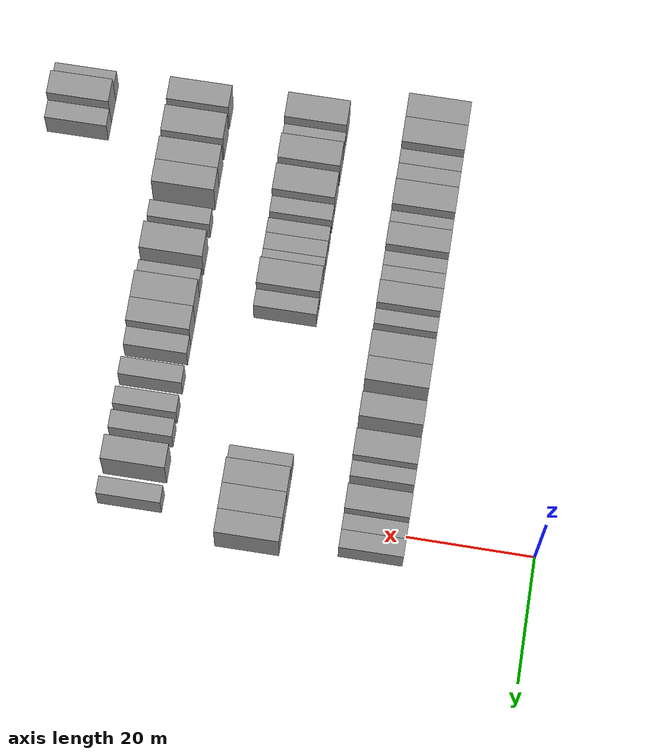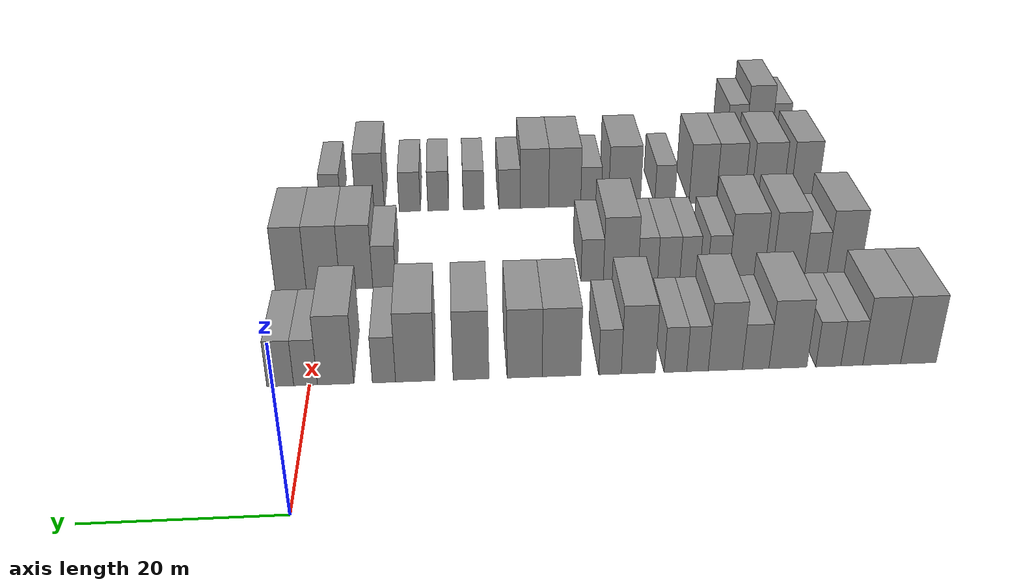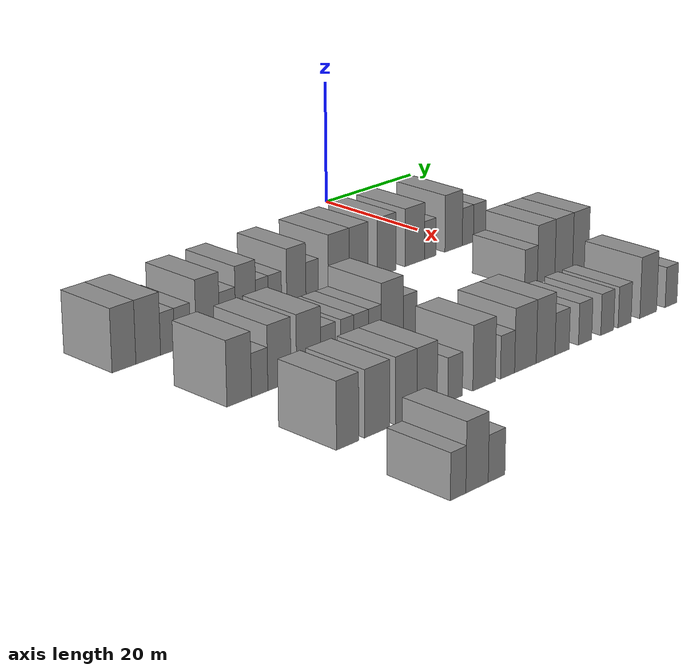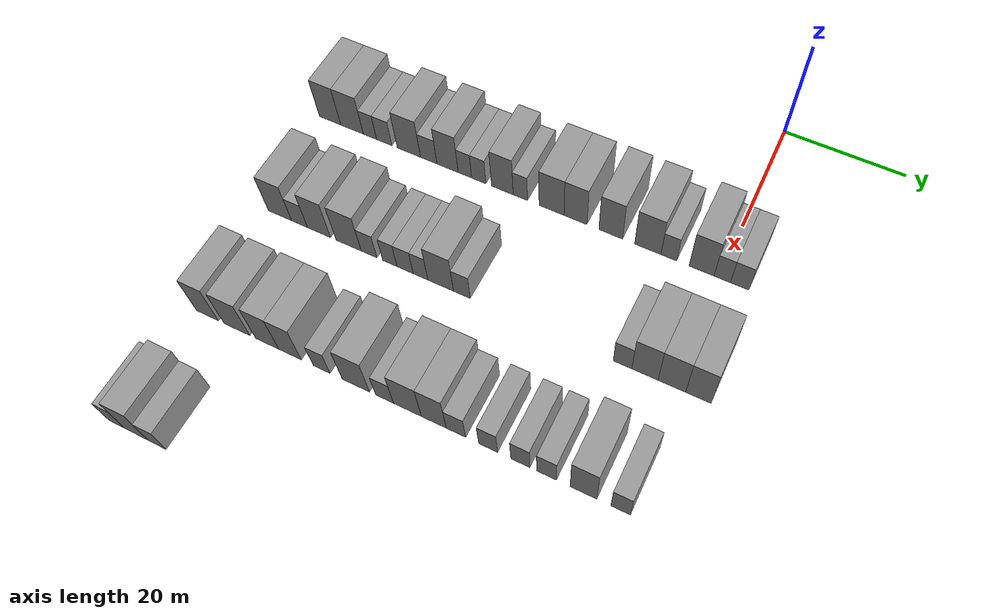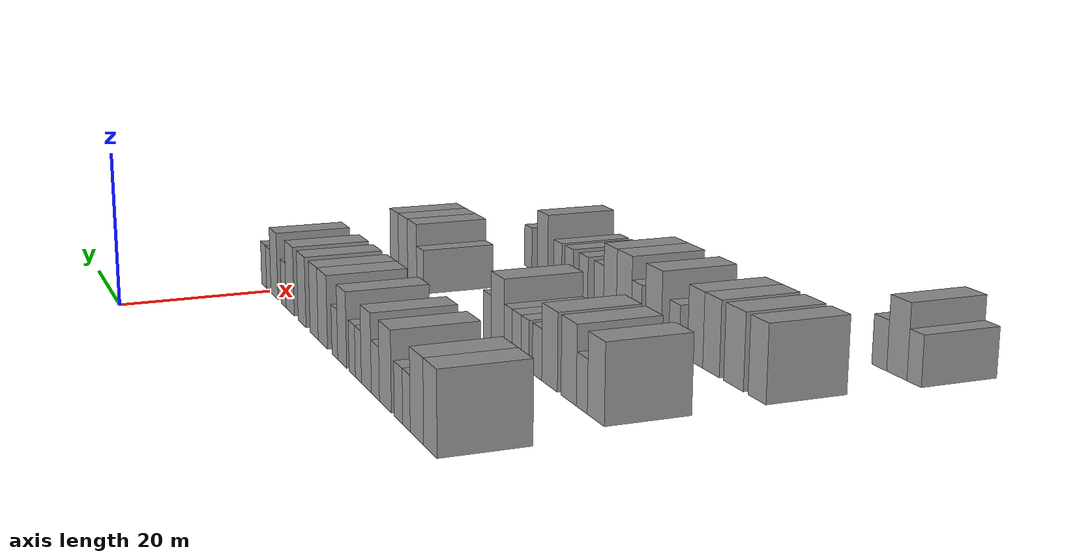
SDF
<sdf version="1.6">
 <world name="default">
  <model name="building_70">
   <static>1</static>
   <pose>25.0000 -67.6205 0 0.000000 0.000000 0.000000</pose>
   <link name="link">
    <pose>0 0 4.50 0 0 0</pose>
    <collision name="collision"><geometry><box><size>10.0000 4.0625 9.0000</size></box></geometry></collision>
    <visual name="visual">
     <cast_shadows>0</cast_shadows>
     <geometry><box><size>10.0000 4.0625 9.0000</size></box></geometry>
     <material>
      <script>
       <uri>model://grey_wall/materials/scripts</uri>
       <uri>model://grey_wall/materials/textures</uri>
       <name>vrc/grey_wall</name>
      </script>
     </material>
    </visual>
   </link>
  </model>
  <model name="building_71">
   <static>1</static>
   <pose>25.0000 -63.4462 0 0.000000 0.000000 0.000000</pose>
   <link name="link">
    <pose>0 0 4.50 0 0 0</pose>
    <collision name="collision"><geometry><box><size>10.0000 4.2859 9.0000</size></box></geometry></collision>
    <visual name="visual">
     <cast_shadows>0</cast_shadows>
     <geometry><box><size>10.0000 4.2859 9.0000</size></box></geometry>
     <material>
      <script>
       <uri>model://grey_wall/materials/scripts</uri>
       <uri>model://grey_wall/materials/textures</uri>
       <name>vrc/grey_wall</name>
      </script>
     </material>
    </visual>
   </link>
  </model>
  <model name="building_72">
   <static>1</static>
   <pose>25.0000 -60.0612 0 0.000000 0.000000 0.000000</pose>
   <link name="link">
    <pose>0 0 3.00 0 0 0</pose>
    <collision name="collision"><geometry><box><size>10.0000 2.4842 6.0000</size></box></geometry></collision>
    <visual name="visual">
     <cast_shadows>0</cast_shadows>
     <geometry><box><size>10.0000 2.4842 6.0000</size></box></geometry>
     <material>
      <script>
       <uri>model://grey_wall/materials/scripts</uri>
       <uri>model://grey_wall/materials/textures</uri>
       <name>vrc/grey_wall</name>
      </script>
     </material>
    </visual>
   </link>
  </model>
  <model name="building_73">
   <static>1</static>
   <pose>25.0000 -57.3961 0 0.000000 0.000000 0.000000</pose>
   <link name="link">
    <pose>0 0 3.00 0 0 0</pose>
    <collision name="collision"><geometry><box><size>10.0000 2.8460 6.0000</size></box></geometry></collision>
    <visual name="visual">
     <cast_shadows>0</cast_shadows>
     <geometry><box><size>10.0000 2.8460 6.0000</size></box></geometry>
     <material>
      <script>
       <uri>model://grey_wall/materials/scripts</uri>
       <uri>model://grey_wall/materials/textures</uri>
       <name>vrc/grey_wall</name>
      </script>
     </material>
    </visual>
   </link>
  </model>
  <model name="building_74">
   <static>1</static>
   <pose>25.0000 -52.8346 0 0.000000 0.000000 0.000000</pose>
   <link name="link">
    <pose>0 0 4.50 0 0 0</pose>
    <collision name="collision"><geometry><box><size>10.0000 4.2770 9.0000</size></box></geometry></collision>
    <visual name="visual">
     <cast_shadows>0</cast_shadows>
     <geometry><box><size>10.0000 4.2770 9.0000</size></box></geometry>
     <material>
      <script>
       <uri>model://grey_wall/materials/scripts</uri>
       <uri>model://grey_wall/materials/textures</uri>
       <name>vrc/grey_wall</name>
      </script>
     </material>
    </visual>
   </link>
  </model>
  <model name="building_75">
   <static>1</static>
   <pose>25.0000 -49.2028 0 0.000000 0.000000 0.000000</pose>
   <link name="link">
    <pose>0 0 3.00 0 0 0</pose>
    <collision name="collision"><geometry><box><size>10.0000 2.9865 6.0000</size></box></geometry></collision>
    <visual name="visual">
     <cast_shadows>0</cast_shadows>
     <geometry><box><size>10.0000 2.9865 6.0000</size></box></geometry>
     <material>
      <script>
       <uri>model://grey_wall/materials/scripts</uri>
       <uri>model://grey_wall/materials/textures</uri>
       <name>vrc/grey_wall</name>
      </script>
     </material>
    </visual>
   </link>
  </model>
  <model name="building_76">
   <static>1</static>
   <pose>25.0000 -45.7944 0 0.000000 0.000000 0.000000</pose>
   <link name="link">
    <pose>0 0 4.50 0 0 0</pose>
    <collision name="collision"><geometry><box><size>10.0000 3.8304 9.0000</size></box></geometry></collision>
    <visual name="visual">
     <cast_shadows>0</cast_shadows>
     <geometry><box><size>10.0000 3.8304 9.0000</size></box></geometry>
     <material>
      <script>
       <uri>model://grey_wall/materials/scripts</uri>
       <uri>model://grey_wall/materials/textures</uri>
       <name>vrc/grey_wall</name>
      </script>
     </material>
    </visual>
   </link>
  </model>
  <model name="building_77">
   <static>1</static>
   <pose>25.0000 -42.6786 0 0.000000 0.000000 0.000000</pose>
   <link name="link">
    <pose>0 0 3.00 0 0 0</pose>
    <collision name="collision"><geometry><box><size>10.0000 2.4010 6.0000</size></box></geometry></collision>
    <visual name="visual">
     <cast_shadows>0</cast_shadows>
     <geometry><box><size>10.0000 2.4010 6.0000</size></box></geometry>
     <material>
      <script>
       <uri>model://grey_wall/materials/scripts</uri>
       <uri>model://grey_wall/materials/textures</uri>
       <name>vrc/grey_wall</name>
      </script>
     </material>
    </visual>
   </link>
  </model>
  <model name="building_78">
   <static>1</static>
   <pose>25.0000 -40.2147 0 0.000000 0.000000 0.000000</pose>
   <link name="link">
    <pose>0 0 3.00 0 0 0</pose>
    <collision name="collision"><geometry><box><size>10.0000 2.5269 6.0000</size></box></geometry></collision>
    <visual name="visual">
     <cast_shadows>0</cast_shadows>
     <geometry><box><size>10.0000 2.5269 6.0000</size></box></geometry>
     <material>
      <script>
       <uri>model://grey_wall/materials/scripts</uri>
       <uri>model://grey_wall/materials/textures</uri>
       <name>vrc/grey_wall</name>
      </script>
     </material>
    </visual>
   </link>
  </model>
  <model name="building_79">
   <static>1</static>
   <pose>25.0000 -36.0636 0 0.000000 0.000000 0.000000</pose>
   <link name="link">
    <pose>0 0 4.50 0 0 0</pose>
    <collision name="collision"><geometry><box><size>10.0000 3.7753 9.0000</size></box></geometry></collision>
    <visual name="visual">
     <cast_shadows>0</cast_shadows>
     <geometry><box><size>10.0000 3.7753 9.0000</size></box></geometry>
     <material>
      <script>
       <uri>model://grey_wall/materials/scripts</uri>
       <uri>model://grey_wall/materials/textures</uri>
       <name>vrc/grey_wall</name>
      </script>
     </material>
    </visual>
   </link>
  </model>
  <model name="building_80">
   <static>1</static>
   <pose>25.0000 -32.9261 0 0.000000 0.000000 0.000000</pose>
   <link name="link">
    <pose>0 0 3.00 0 0 0</pose>
    <collision name="collision"><geometry><box><size>10.0000 2.4998 6.0000</size></box></geometry></collision>
    <visual name="visual">
     <cast_shadows>0</cast_shadows>
     <geometry><box><size>10.0000 2.4998 6.0000</size></box></geometry>
     <material>
      <script>
       <uri>model://grey_wall/materials/scripts</uri>
       <uri>model://grey_wall/materials/textures</uri>
       <name>vrc/grey_wall</name>
      </script>
     </material>
    </visual>
   </link>
  </model>
  <model name="building_81">
   <static>1</static>
   <pose>25.0000 -27.5524 0 0.000000 0.000000 0.000000</pose>
   <link name="link">
    <pose>0 0 4.50 0 0 0</pose>
    <collision name="collision"><geometry><box><size>10.0000 4.2475 9.0000</size></box></geometry></collision>
    <visual name="visual">
     <cast_shadows>0</cast_shadows>
     <geometry><box><size>10.0000 4.2475 9.0000</size></box></geometry>
     <material>
      <script>
       <uri>model://grey_wall/materials/scripts</uri>
       <uri>model://grey_wall/materials/textures</uri>
       <name>vrc/grey_wall</name>
      </script>
     </material>
    </visual>
   </link>
  </model>
  <model name="building_82">
   <static>1</static>
   <pose>25.0000 -23.4913 0 0.000000 0.000000 0.000000</pose>
   <link name="link">
    <pose>0 0 4.50 0 0 0</pose>
    <collision name="collision"><geometry><box><size>10.0000 3.8747 9.0000</size></box></geometry></collision>
    <visual name="visual">
     <cast_shadows>0</cast_shadows>
     <geometry><box><size>10.0000 3.8747 9.0000</size></box></geometry>
     <material>
      <script>
       <uri>model://grey_wall/materials/scripts</uri>
       <uri>model://grey_wall/materials/textures</uri>
       <name>vrc/grey_wall</name>
      </script>
     </material>
    </visual>
   </link>
  </model>
  <model name="building_83">
   <static>1</static>
   <pose>25.0000 -17.5889 0 0.000000 0.000000 0.000000</pose>
   <link name="link">
    <pose>0 0 4.50 0 0 0</pose>
    <collision name="collision"><geometry><box><size>10.0000 3.9301 9.0000</size></box></geometry></collision>
    <visual name="visual">
     <cast_shadows>0</cast_shadows>
     <geometry><box><size>10.0000 3.9301 9.0000</size></box></geometry>
     <material>
      <script>
       <uri>model://grey_wall/materials/scripts</uri>
       <uri>model://grey_wall/materials/textures</uri>
       <name>vrc/grey_wall</name>
      </script>
     </material>
    </visual>
   </link>
  </model>
  <model name="building_84">
   <static>1</static>
   <pose>25.0000 -11.4780 0 0.000000 0.000000 0.000000</pose>
   <link name="link">
    <pose>0 0 4.50 0 0 0</pose>
    <collision name="collision"><geometry><box><size>10.0000 4.2918 9.0000</size></box></geometry></collision>
    <visual name="visual">
     <cast_shadows>0</cast_shadows>
     <geometry><box><size>10.0000 4.2918 9.0000</size></box></geometry>
     <material>
      <script>
       <uri>model://grey_wall/materials/scripts</uri>
       <uri>model://grey_wall/materials/textures</uri>
       <name>vrc/grey_wall</name>
      </script>
     </material>
    </visual>
   </link>
  </model>
  <model name="building_85">
   <static>1</static>
   <pose>25.0000 -8.0637 0 0.000000 0.000000 0.000000</pose>
   <link name="link">
    <pose>0 0 3.00 0 0 0</pose>
    <collision name="collision"><geometry><box><size>10.0000 2.5367 6.0000</size></box></geometry></collision>
    <visual name="visual">
     <cast_shadows>0</cast_shadows>
     <geometry><box><size>10.0000 2.5367 6.0000</size></box></geometry>
     <material>
      <script>
       <uri>model://grey_wall/materials/scripts</uri>
       <uri>model://grey_wall/materials/textures</uri>
       <name>vrc/grey_wall</name>
      </script>
     </material>
    </visual>
   </link>
  </model>
  <model name="building_86">
   <static>1</static>
   <pose>25.0000 -2.8161 0 0.000000 0.000000 0.000000</pose>
   <link name="link">
    <pose>0 0 4.50 0 0 0</pose>
    <collision name="collision"><geometry><box><size>10.0000 3.9586 9.0000</size></box></geometry></collision>
    <visual name="visual">
     <cast_shadows>0</cast_shadows>
     <geometry><box><size>10.0000 3.9586 9.0000</size></box></geometry>
     <material>
      <script>
       <uri>model://grey_wall/materials/scripts</uri>
       <uri>model://grey_wall/materials/textures</uri>
       <name>vrc/grey_wall</name>
      </script>
     </material>
    </visual>
   </link>
  </model>
  <model name="building_87">
   <static>1</static>
   <pose>25.0000 0.4463 0 0.000000 0.000000 0.000000</pose>
   <link name="link">
    <pose>0 0 3.00 0 0 0</pose>
    <collision name="collision"><geometry><box><size>10.0000 2.5663 6.0000</size></box></geometry></collision>
    <visual name="visual">
     <cast_shadows>0</cast_shadows>
     <geometry><box><size>10.0000 2.5663 6.0000</size></box></geometry>
     <material>
      <script>
       <uri>model://grey_wall/materials/scripts</uri>
       <uri>model://grey_wall/materials/textures</uri>
       <name>vrc/grey_wall</name>
      </script>
     </material>
    </visual>
   </link>
  </model>
  <model name="building_88">
   <static>1</static>
   <pose>25.0000 3.1837 0 0.000000 0.000000 0.000000</pose>
   <link name="link">
    <pose>0 0 3.00 0 0 0</pose>
    <collision name="collision"><geometry><box><size>10.0000 2.9085 6.0000</size></box></geometry></collision>
    <visual name="visual">
     <cast_shadows>0</cast_shadows>
     <geometry><box><size>10.0000 2.9085 6.0000</size></box></geometry>
     <material>
      <script>
       <uri>model://grey_wall/materials/scripts</uri>
       <uri>model://grey_wall/materials/textures</uri>
       <name>vrc/grey_wall</name>
      </script>
     </material>
    </visual>
   </link>
  </model>
  <model name="building_241">
   <static>1</static>
   <pose>44.0000 -64.7025 0 0.000000 0.000000 0.000000</pose>
   <link name="link">
    <pose>0 0 4.50 0 0 0</pose>
    <collision name="collision"><geometry><box><size>10.0000 4.2488 9.0000</size></box></geometry></collision>
    <visual name="visual">
     <cast_shadows>0</cast_shadows>
     <geometry><box><size>10.0000 4.2488 9.0000</size></box></geometry>
     <material>
      <script>
       <uri>model://grey_wall/materials/scripts</uri>
       <uri>model://grey_wall/materials/textures</uri>
       <name>vrc/grey_wall</name>
      </script>
     </material>
    </visual>
   </link>
  </model>
  <model name="building_242">
   <static>1</static>
   <pose>44.0000 -61.1537 0 0.000000 0.000000 0.000000</pose>
   <link name="link">
    <pose>0 0 3.00 0 0 0</pose>
    <collision name="collision"><geometry><box><size>10.0000 2.8488 6.0000</size></box></geometry></collision>
    <visual name="visual">
     <cast_shadows>0</cast_shadows>
     <geometry><box><size>10.0000 2.8488 6.0000</size></box></geometry>
     <material>
      <script>
       <uri>model://grey_wall/materials/scripts</uri>
       <uri>model://grey_wall/materials/textures</uri>
       <name>vrc/grey_wall</name>
      </script>
     </material>
    </visual>
   </link>
  </model>
  <model name="building_243">
   <static>1</static>
   <pose>44.0000 -57.6625 0 0.000000 0.000000 0.000000</pose>
   <link name="link">
    <pose>0 0 4.50 0 0 0</pose>
    <collision name="collision"><geometry><box><size>10.0000 4.1336 9.0000</size></box></geometry></collision>
    <visual name="visual">
     <cast_shadows>0</cast_shadows>
     <geometry><box><size>10.0000 4.1336 9.0000</size></box></geometry>
     <material>
      <script>
       <uri>model://grey_wall/materials/scripts</uri>
       <uri>model://grey_wall/materials/textures</uri>
       <name>vrc/grey_wall</name>
      </script>
     </material>
    </visual>
   </link>
  </model>
  <model name="building_244">
   <static>1</static>
   <pose>44.0000 -52.3863 0 0.000000 0.000000 0.000000</pose>
   <link name="link">
    <pose>0 0 4.50 0 0 0</pose>
    <collision name="collision"><geometry><box><size>10.0000 4.4188 9.0000</size></box></geometry></collision>
    <visual name="visual">
     <cast_shadows>0</cast_shadows>
     <geometry><box><size>10.0000 4.4188 9.0000</size></box></geometry>
     <material>
      <script>
       <uri>model://grey_wall/materials/scripts</uri>
       <uri>model://grey_wall/materials/textures</uri>
       <name>vrc/grey_wall</name>
      </script>
     </material>
    </visual>
   </link>
  </model>
  <model name="building_245">
   <static>1</static>
   <pose>44.0000 -48.8035 0 0.000000 0.000000 0.000000</pose>
   <link name="link">
    <pose>0 0 3.00 0 0 0</pose>
    <collision name="collision"><geometry><box><size>10.0000 2.7468 6.0000</size></box></geometry></collision>
    <visual name="visual">
     <cast_shadows>0</cast_shadows>
     <geometry><box><size>10.0000 2.7468 6.0000</size></box></geometry>
     <material>
      <script>
       <uri>model://grey_wall/materials/scripts</uri>
       <uri>model://grey_wall/materials/textures</uri>
       <name>vrc/grey_wall</name>
      </script>
     </material>
    </visual>
   </link>
  </model>
  <model name="building_246">
   <static>1</static>
   <pose>44.0000 -45.2013 0 0.000000 0.000000 0.000000</pose>
   <link name="link">
    <pose>0 0 3.00 0 0 0</pose>
    <collision name="collision"><geometry><box><size>10.0000 2.4577 6.0000</size></box></geometry></collision>
    <visual name="visual">
     <cast_shadows>0</cast_shadows>
     <geometry><box><size>10.0000 2.4577 6.0000</size></box></geometry>
     <material>
      <script>
       <uri>model://grey_wall/materials/scripts</uri>
       <uri>model://grey_wall/materials/textures</uri>
       <name>vrc/grey_wall</name>
      </script>
     </material>
    </visual>
   </link>
  </model>
  <model name="building_247">
   <static>1</static>
   <pose>44.0000 -42.5832 0 0.000000 0.000000 0.000000</pose>
   <link name="link">
    <pose>0 0 3.00 0 0 0</pose>
    <collision name="collision"><geometry><box><size>10.0000 2.7784 6.0000</size></box></geometry></collision>
    <visual name="visual">
     <cast_shadows>0</cast_shadows>
     <geometry><box><size>10.0000 2.7784 6.0000</size></box></geometry>
     <material>
      <script>
       <uri>model://grey_wall/materials/scripts</uri>
       <uri>model://grey_wall/materials/textures</uri>
       <name>vrc/grey_wall</name>
      </script>
     </material>
    </visual>
   </link>
  </model>
  <model name="building_248">
   <static>1</static>
   <pose>44.0000 -39.9499 0 0.000000 0.000000 0.000000</pose>
   <link name="link">
    <pose>0 0 3.00 0 0 0</pose>
    <collision name="collision"><geometry><box><size>10.0000 2.4882 6.0000</size></box></geometry></collision>
    <visual name="visual">
     <cast_shadows>0</cast_shadows>
     <geometry><box><size>10.0000 2.4882 6.0000</size></box></geometry>
     <material>
      <script>
       <uri>model://grey_wall/materials/scripts</uri>
       <uri>model://grey_wall/materials/textures</uri>
       <name>vrc/grey_wall</name>
      </script>
     </material>
    </visual>
   </link>
  </model>
  <model name="building_249">
   <static>1</static>
   <pose>44.0000 -36.5507 0 0.000000 0.000000 0.000000</pose>
   <link name="link">
    <pose>0 0 4.50 0 0 0</pose>
    <collision name="collision"><geometry><box><size>10.0000 4.3102 9.0000</size></box></geometry></collision>
    <visual name="visual">
     <cast_shadows>0</cast_shadows>
     <geometry><box><size>10.0000 4.3102 9.0000</size></box></geometry>
     <material>
      <script>
       <uri>model://grey_wall/materials/scripts</uri>
       <uri>model://grey_wall/materials/textures</uri>
       <name>vrc/grey_wall</name>
      </script>
     </material>
    </visual>
   </link>
  </model>
  <model name="building_250">
   <static>1</static>
   <pose>44.0000 -33.0035 0 0.000000 0.000000 0.000000</pose>
   <link name="link">
    <pose>0 0 3.00 0 0 0</pose>
    <collision name="collision"><geometry><box><size>10.0000 2.7840 6.0000</size></box></geometry></collision>
    <visual name="visual">
     <cast_shadows>0</cast_shadows>
     <geometry><box><size>10.0000 2.7840 6.0000</size></box></geometry>
     <material>
      <script>
       <uri>model://grey_wall/materials/scripts</uri>
       <uri>model://grey_wall/materials/textures</uri>
       <name>vrc/grey_wall</name>
      </script>
     </material>
    </visual>
   </link>
  </model>
  <model name="building_251">
   <static>1</static>
   <pose>44.0000 -7.3514 0 0.000000 0.000000 0.000000</pose>
   <link name="link">
    <pose>0 0 3.00 0 0 0</pose>
    <collision name="collision"><geometry><box><size>10.0000 2.8401 6.0000</size></box></geometry></collision>
    <visual name="visual">
     <cast_shadows>0</cast_shadows>
     <geometry><box><size>10.0000 2.8401 6.0000</size></box></geometry>
     <material>
      <script>
       <uri>model://grey_wall/materials/scripts</uri>
       <uri>model://grey_wall/materials/textures</uri>
       <name>vrc/grey_wall</name>
      </script>
     </material>
    </visual>
   </link>
  </model>
  <model name="building_252">
   <static>1</static>
   <pose>44.0000 -3.9336 0 0.000000 0.000000 0.000000</pose>
   <link name="link">
    <pose>0 0 4.50 0 0 0</pose>
    <collision name="collision"><geometry><box><size>10.0000 3.9955 9.0000</size></box></geometry></collision>
    <visual name="visual">
     <cast_shadows>0</cast_shadows>
     <geometry><box><size>10.0000 3.9955 9.0000</size></box></geometry>
     <material>
      <script>
       <uri>model://grey_wall/materials/scripts</uri>
       <uri>model://grey_wall/materials/textures</uri>
       <name>vrc/grey_wall</name>
      </script>
     </material>
    </visual>
   </link>
  </model>
  <model name="building_253">
   <static>1</static>
   <pose>44.0000 0.1264 0 0.000000 0.000000 0.000000</pose>
   <link name="link">
    <pose>0 0 4.50 0 0 0</pose>
    <collision name="collision"><geometry><box><size>10.0000 4.1245 9.0000</size></box></geometry></collision>
    <visual name="visual">
     <cast_shadows>0</cast_shadows>
     <geometry><box><size>10.0000 4.1245 9.0000</size></box></geometry>
     <material>
      <script>
       <uri>model://grey_wall/materials/scripts</uri>
       <uri>model://grey_wall/materials/textures</uri>
       <name>vrc/grey_wall</name>
      </script>
     </material>
    </visual>
   </link>
  </model>
  <model name="building_254">
   <static>1</static>
   <pose>44.0000 4.0746 0 0.000000 0.000000 0.000000</pose>
   <link name="link">
    <pose>0 0 4.50 0 0 0</pose>
    <collision name="collision"><geometry><box><size>10.0000 3.7720 9.0000</size></box></geometry></collision>
    <visual name="visual">
     <cast_shadows>0</cast_shadows>
     <geometry><box><size>10.0000 3.7720 9.0000</size></box></geometry>
     <material>
      <script>
       <uri>model://grey_wall/materials/scripts</uri>
       <uri>model://grey_wall/materials/textures</uri>
       <name>vrc/grey_wall</name>
      </script>
     </material>
    </visual>
   </link>
  </model>
  <model name="building_416">
   <static>1</static>
   <pose>63.0000 -64.5739 0 0.000000 0.000000 0.000000</pose>
   <link name="link">
    <pose>0 0 4.50 0 0 0</pose>
    <collision name="collision"><geometry><box><size>10.0000 3.8427 9.0000</size></box></geometry></collision>
    <visual name="visual">
     <cast_shadows>0</cast_shadows>
     <geometry><box><size>10.0000 3.8427 9.0000</size></box></geometry>
     <material>
      <script>
       <uri>model://grey_wall/materials/scripts</uri>
       <uri>model://grey_wall/materials/textures</uri>
       <name>vrc/grey_wall</name>
      </script>
     </material>
    </visual>
   </link>
  </model>
  <model name="building_417">
   <static>1</static>
   <pose>63.0000 -59.4303 0 0.000000 0.000000 0.000000</pose>
   <link name="link">
    <pose>0 0 4.50 0 0 0</pose>
    <collision name="collision"><geometry><box><size>10.0000 4.4445 9.0000</size></box></geometry></collision>
    <visual name="visual">
     <cast_shadows>0</cast_shadows>
     <geometry><box><size>10.0000 4.4445 9.0000</size></box></geometry>
     <material>
      <script>
       <uri>model://grey_wall/materials/scripts</uri>
       <uri>model://grey_wall/materials/textures</uri>
       <name>vrc/grey_wall</name>
      </script>
     </material>
    </visual>
   </link>
  </model>
  <model name="building_418">
   <static>1</static>
   <pose>63.0000 -54.2439 0 0.000000 0.000000 0.000000</pose>
   <link name="link">
    <pose>0 0 4.50 0 0 0</pose>
    <collision name="collision"><geometry><box><size>10.0000 3.9283 9.0000</size></box></geometry></collision>
    <visual name="visual">
     <cast_shadows>0</cast_shadows>
     <geometry><box><size>10.0000 3.9283 9.0000</size></box></geometry>
     <material>
      <script>
       <uri>model://grey_wall/materials/scripts</uri>
       <uri>model://grey_wall/materials/textures</uri>
       <name>vrc/grey_wall</name>
      </script>
     </material>
    </visual>
   </link>
  </model>
  <model name="building_419">
   <static>1</static>
   <pose>63.0000 -50.3901 0 0.000000 0.000000 0.000000</pose>
   <link name="link">
    <pose>0 0 4.50 0 0 0</pose>
    <collision name="collision"><geometry><box><size>10.0000 3.7791 9.0000</size></box></geometry></collision>
    <visual name="visual">
     <cast_shadows>0</cast_shadows>
     <geometry><box><size>10.0000 3.7791 9.0000</size></box></geometry>
     <material>
      <script>
       <uri>model://grey_wall/materials/scripts</uri>
       <uri>model://grey_wall/materials/textures</uri>
       <name>vrc/grey_wall</name>
      </script>
     </material>
    </visual>
   </link>
  </model>
  <model name="building_420">
   <static>1</static>
   <pose>63.0000 -45.1132 0 0.000000 0.000000 0.000000</pose>
   <link name="link">
    <pose>0 0 3.00 0 0 0</pose>
    <collision name="collision"><geometry><box><size>10.0000 2.7748 6.0000</size></box></geometry></collision>
    <visual name="visual">
     <cast_shadows>0</cast_shadows>
     <geometry><box><size>10.0000 2.7748 6.0000</size></box></geometry>
     <material>
      <script>
       <uri>model://grey_wall/materials/scripts</uri>
       <uri>model://grey_wall/materials/textures</uri>
       <name>vrc/grey_wall</name>
      </script>
     </material>
    </visual>
   </link>
  </model>
  <model name="building_421">
   <static>1</static>
   <pose>63.0000 -39.5154 0 0.000000 0.000000 0.000000</pose>
   <link name="link">
    <pose>0 0 4.50 0 0 0</pose>
    <collision name="collision"><geometry><box><size>10.0000 4.4207 9.0000</size></box></geometry></collision>
    <visual name="visual">
     <cast_shadows>0</cast_shadows>
     <geometry><box><size>10.0000 4.4207 9.0000</size></box></geometry>
     <material>
      <script>
       <uri>model://grey_wall/materials/scripts</uri>
       <uri>model://grey_wall/materials/textures</uri>
       <name>vrc/grey_wall</name>
      </script>
     </material>
    </visual>
   </link>
  </model>
  <model name="building_422">
   <static>1</static>
   <pose>63.0000 -34.8869 0 0.000000 0.000000 0.000000</pose>
   <link name="link">
    <pose>0 0 3.00 0 0 0</pose>
    <collision name="collision"><geometry><box><size>10.0000 2.8364 6.0000</size></box></geometry></collision>
    <visual name="visual">
     <cast_shadows>0</cast_shadows>
     <geometry><box><size>10.0000 2.8364 6.0000</size></box></geometry>
     <material>
      <script>
       <uri>model://grey_wall/materials/scripts</uri>
       <uri>model://grey_wall/materials/textures</uri>
       <name>vrc/grey_wall</name>
      </script>
     </material>
    </visual>
   </link>
  </model>
  <model name="building_423">
   <static>1</static>
   <pose>63.0000 -31.2677 0 0.000000 0.000000 0.000000</pose>
   <link name="link">
    <pose>0 0 4.50 0 0 0</pose>
    <collision name="collision"><geometry><box><size>10.0000 4.4019 9.0000</size></box></geometry></collision>
    <visual name="visual">
     <cast_shadows>0</cast_shadows>
     <geometry><box><size>10.0000 4.4019 9.0000</size></box></geometry>
     <material>
      <script>
       <uri>model://grey_wall/materials/scripts</uri>
       <uri>model://grey_wall/materials/textures</uri>
       <name>vrc/grey_wall</name>
      </script>
     </material>
    </visual>
   </link>
  </model>
  <model name="building_424">
   <static>1</static>
   <pose>63.0000 -27.1208 0 0.000000 0.000000 0.000000</pose>
   <link name="link">
    <pose>0 0 4.50 0 0 0</pose>
    <collision name="collision"><geometry><box><size>10.0000 3.8920 9.0000</size></box></geometry></collision>
    <visual name="visual">
     <cast_shadows>0</cast_shadows>
     <geometry><box><size>10.0000 3.8920 9.0000</size></box></geometry>
     <material>
      <script>
       <uri>model://grey_wall/materials/scripts</uri>
       <uri>model://grey_wall/materials/textures</uri>
       <name>vrc/grey_wall</name>
      </script>
     </material>
    </visual>
   </link>
  </model>
  <model name="building_425">
   <static>1</static>
   <pose>63.0000 -23.6824 0 0.000000 0.000000 0.000000</pose>
   <link name="link">
    <pose>0 0 3.00 0 0 0</pose>
    <collision name="collision"><geometry><box><size>10.0000 2.9847 6.0000</size></box></geometry></collision>
    <visual name="visual">
     <cast_shadows>0</cast_shadows>
     <geometry><box><size>10.0000 2.9847 6.0000</size></box></geometry>
     <material>
      <script>
       <uri>model://grey_wall/materials/scripts</uri>
       <uri>model://grey_wall/materials/textures</uri>
       <name>vrc/grey_wall</name>
      </script>
     </material>
    </visual>
   </link>
  </model>
  <model name="building_426">
   <static>1</static>
   <pose>63.0000 -18.7660 0 0.000000 0.000000 0.000000</pose>
   <link name="link">
    <pose>0 0 3.00 0 0 0</pose>
    <collision name="collision"><geometry><box><size>10.0000 2.8481 6.0000</size></box></geometry></collision>
    <visual name="visual">
     <cast_shadows>0</cast_shadows>
     <geometry><box><size>10.0000 2.8481 6.0000</size></box></geometry>
     <material>
      <script>
       <uri>model://grey_wall/materials/scripts</uri>
       <uri>model://grey_wall/materials/textures</uri>
       <name>vrc/grey_wall</name>
      </script>
     </material>
    </visual>
   </link>
  </model>
  <model name="building_427">
   <static>1</static>
   <pose>63.0000 -13.9228 0 0.000000 0.000000 0.000000</pose>
   <link name="link">
    <pose>0 0 3.00 0 0 0</pose>
    <collision name="collision"><geometry><box><size>10.0000 2.8384 6.0000</size></box></geometry></collision>
    <visual name="visual">
     <cast_shadows>0</cast_shadows>
     <geometry><box><size>10.0000 2.8384 6.0000</size></box></geometry>
     <material>
      <script>
       <uri>model://grey_wall/materials/scripts</uri>
       <uri>model://grey_wall/materials/textures</uri>
       <name>vrc/grey_wall</name>
      </script>
     </material>
    </visual>
   </link>
  </model>
  <model name="building_428">
   <static>1</static>
   <pose>63.0000 -10.0515 0 0.000000 0.000000 0.000000</pose>
   <link name="link">
    <pose>0 0 3.00 0 0 0</pose>
    <collision name="collision"><geometry><box><size>10.0000 2.9042 6.0000</size></box></geometry></collision>
    <visual name="visual">
     <cast_shadows>0</cast_shadows>
     <geometry><box><size>10.0000 2.9042 6.0000</size></box></geometry>
     <material>
      <script>
       <uri>model://grey_wall/materials/scripts</uri>
       <uri>model://grey_wall/materials/textures</uri>
       <name>vrc/grey_wall</name>
      </script>
     </material>
    </visual>
   </link>
  </model>
  <model name="building_429">
   <static>1</static>
   <pose>63.0000 -4.6705 0 0.000000 0.000000 0.000000</pose>
   <link name="link">
    <pose>0 0 4.50 0 0 0</pose>
    <collision name="collision"><geometry><box><size>10.0000 3.8579 9.0000</size></box></geometry></collision>
    <visual name="visual">
     <cast_shadows>0</cast_shadows>
     <geometry><box><size>10.0000 3.8579 9.0000</size></box></geometry>
     <material>
      <script>
       <uri>model://grey_wall/materials/scripts</uri>
       <uri>model://grey_wall/materials/textures</uri>
       <name>vrc/grey_wall</name>
      </script>
     </material>
    </visual>
   </link>
  </model>
  <model name="building_430">
   <static>1</static>
   <pose>63.0000 0.6510 0 0.000000 0.000000 0.000000</pose>
   <link name="link">
    <pose>0 0 3.00 0 0 0</pose>
    <collision name="collision"><geometry><box><size>10.0000 2.7850 6.0000</size></box></geometry></collision>
    <visual name="visual">
     <cast_shadows>0</cast_shadows>
     <geometry><box><size>10.0000 2.7850 6.0000</size></box></geometry>
     <material>
      <script>
       <uri>model://grey_wall/materials/scripts</uri>
       <uri>model://grey_wall/materials/textures</uri>
       <name>vrc/grey_wall</name>
      </script>
     </material>
    </visual>
   </link>
  </model>
  <model name="building_593">
   <static>1</static>
   <pose>82.0000 -65.9166 0 0.000000 0.000000 0.000000</pose>
   <link name="link">
    <pose>0 0 3.00 0 0 0</pose>
    <collision name="collision"><geometry><box><size>10.0000 2.6763 6.0000</size></box></geometry></collision>
    <visual name="visual">
     <cast_shadows>0</cast_shadows>
     <geometry><box><size>10.0000 2.6763 6.0000</size></box></geometry>
     <material>
      <script>
       <uri>model://grey_wall/materials/scripts</uri>
       <uri>model://grey_wall/materials/textures</uri>
       <name>vrc/grey_wall</name>
      </script>
     </material>
    </visual>
   </link>
  </model>
  <model name="building_594">
   <static>1</static>
   <pose>82.0000 -62.6206 0 0.000000 0.000000 0.000000</pose>
   <link name="link">
    <pose>0 0 4.50 0 0 0</pose>
    <collision name="collision"><geometry><box><size>10.0000 3.9156 9.0000</size></box></geometry></collision>
    <visual name="visual">
     <cast_shadows>0</cast_shadows>
     <geometry><box><size>10.0000 3.9156 9.0000</size></box></geometry>
     <material>
      <script>
       <uri>model://grey_wall/materials/scripts</uri>
       <uri>model://grey_wall/materials/textures</uri>
       <name>vrc/grey_wall</name>
      </script>
     </material>
    </visual>
   </link>
  </model>
  <model name="building_595">
   <static>1</static>
   <pose>82.0000 -59.1735 0 0.000000 0.000000 0.000000</pose>
   <link name="link">
    <pose>0 0 3.00 0 0 0</pose>
    <collision name="collision"><geometry><box><size>10.0000 2.9787 6.0000</size></box></geometry></collision>
    <visual name="visual">
     <cast_shadows>0</cast_shadows>
     <geometry><box><size>10.0000 2.9787 6.0000</size></box></geometry>
     <material>
      <script>
       <uri>model://grey_wall/materials/scripts</uri>
       <uri>model://grey_wall/materials/textures</uri>
       <name>vrc/grey_wall</name>
      </script>
     </material>
    </visual>
   </link>
  </model>
 </world>
</sdf>
